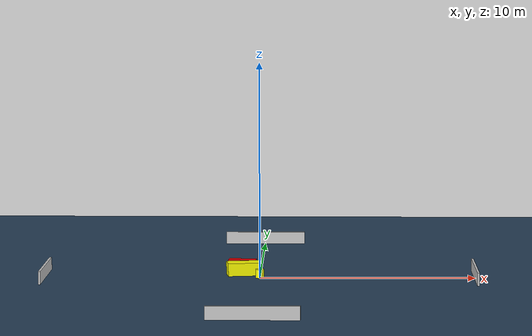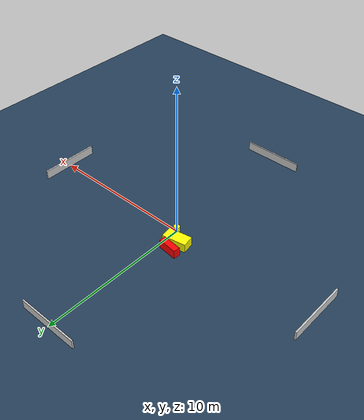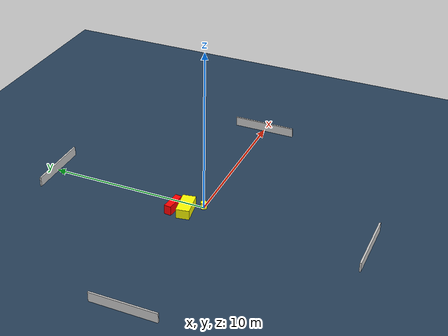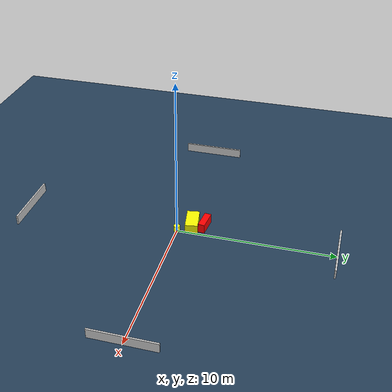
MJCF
<?xml version="1.0" ?>
<mujoco model="generated_environment">
  <option timestep="0.01" integrator="RK4" cone="elliptic"/>
  <default>
    <geom density="1"/>
  </default>
  <asset>
    <texture builtin="gradient" height="3072" name="skybox" rgb1="0.3 0.5 0.7" rgb2="0 0 0" type="skybox" width="512"/>
    <texture builtin="checker" height="300" name="groundplane" rgb1="0.2 0.3 0.4" rgb2="0.1 0.2 0.3" type="2d" width="300"/>
    <material name="groundplane" reflectance="0.2" texrepeat="5 5" texture="groundplane"/>
  </asset>
  <worldbody>
    <light dir="0 0 -1" directional="true" pos="0 0 1.5"/>
    <geom condim="3" friction="0.5 0.005 0.001" material="groundplane" name="floor" pos="0 0 0" size="0 0 0.05" type="plane"/>
    <body name="walls">
      <geom name="wall_1" condim="4" pos="-10.0 0.0 0.3" rgba="0.800000011920929 0.800000011920929 0.800000011920929 1.0" size="0.05 2.0 0.3" type="box"/>
      <geom name="wall_2" condim="4" pos="10.0 0.0 0.3" rgba="0.800000011920929 0.800000011920929 0.800000011920929 1.0" size="0.05 2.0 0.3" type="box"/>
      <geom name="wall_3" condim="4" pos="0.0 -10.0 0.3" rgba="0.800000011920929 0.800000011920929 0.800000011920929 1.0" size="2.0 0.05 0.3" type="box"/>
      <geom name="wall_4" condim="4" pos="0.0 10.0 0.3" rgba="0.800000011920929 0.800000011920929 0.800000011920929 1.0" size="2.0 0.05 0.3" type="box"/>
    </body>
    <body name="robot">
      <joint name="joint_x" type="slide" pos="0 0 0" axis="1 0 0"/>
      <joint name="joint_y" type="slide" pos="0 0 0" axis="0 1 0"/>
      <geom name="robot" type="cylinder" pos="0.0 0.0 0.2" size="0.2 0.2 0.0" mass="5.0" friction="1.0 0.005 0.0001" condim="4" rgba="1.0 1.0 0.0 1.0"/>
    </body>
    <body name="obstacle_1_movable">
      <geom name="obstacle_1_movable" condim="4" pos="-0.755616307133722 0.806438640564239 0.3" euler="0 0 279.37640138475916" friction="0.0 0.005 0.001" rgba="1.0 1.0 0.0 1.0" size="0.40017825029454435 0.7908929077721059 0.3" type="box" mass="0.1"/>
      <joint type="free"/>
    </body>
    <body name="obstacle_2_static">
      <geom name="obstacle_2_static" condim="4" pos="-0.8610575345841782 1.5832054357398255 0.3" euler="0 0 263.90198713063955" friction="0.0 0.005 0.001" rgba="1.0 0.0 0.0 1.0" size="0.2136787695774608 0.643405435247316 0.3" type="box"/>
    </body>
  </worldbody>
  <actuator>
    <motor name="actuator_x" joint="joint_x" gear="1" ctrlrange="-1 1"/>
    <motor name="actuator_y" joint="joint_y" gear="1" ctrlrange="-1 1"/>
  </actuator>
</mujoco>
